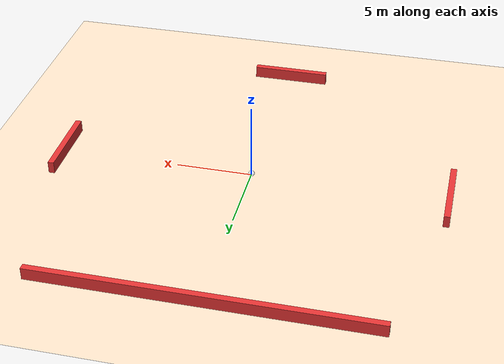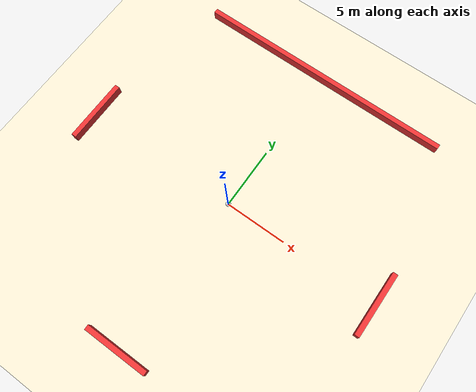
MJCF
<mujoco model="sphere">
    <compiler angle="degree" coordinate="local" inertiafromgeom="true"/>

    <option density="4000" integrator="RK4" timestep="0.01" viscosity="0.1"/>

    <default>
        <geom conaffinity="1" condim="1" contype="1" margin="0.001" solimp=".8 .8 .01" solref="0.02 1" material="geom" />

    </default>

    <asset>
        <texture builtin="gradient" height="100" rgb1="1 1 1" rgb2="0 0 0" type="skybox" width="100"/>
        <texture builtin="flat" height="1278" mark="cross" markrgb="1 1 1" name="texgeom" random="0.01" rgb1="0.8 0.6 0.4" rgb2="0.8 0.6 0.4" type="cube" width="127"/>
        <texture builtin="checker" height="100" name="texplane" rgb1="0 0 0" rgb2="0.8 0.8 0.8" type="2d" width="100"/>
        <material name="MatPlane" reflectance="0.5" shininess="1" specular="1" texrepeat="30 30" texture="texplane"/>
        <material name="geom" texture="texgeom" texuniform="true"/>
    </asset>

    <worldbody>
        <light cutoff="100" diffuse="1 1 1" dir="-1 0 -1.3" directional="true" exponent="1" pos="0 0 1.3" specular=".1 .1 .1"/>
        <geom conaffinity="1" condim="3" material="MatPlane" name="floor" pos="0 0 -0.1" rgba="1 0.9 0.8 1" size="40 40 0.1" type="plane"/>

        <!--            Sphere              -->
        <body name="ball" pos="0 0 0.1">
            <geom friction= "2.0" conaffinity="1" contype="1" density="1000" type="sphere" size="0.2" rgba="1 1 1 1"/>
            <joint axis="1 0 0" name="x-rotor" pos="0 0 0.2" type="slide"/>
            <joint axis="0 1 0" name="y-rotor" pos="0 0 0.2" type="slide"/>

        </body>

        <body name="wall-up" pos="-12.8 0 0.3">
            <geom friction= "2.0" conaffinity="1" contype="1" density="1000" size="0.2 2.6 0.4" rgba="0.9 0.2 0.2 1" type="box"/>
        </body>
        <body name="wall-left" pos="-0.04 -12.8 0.3">
            <geom conaffinity="1" friction= "2.0" contype="1" density="1000" size="2.6 0.2 0.4" rgba="0.9 0.2 0.2 1" type="box"/>
        </body>
        <body name="wall-bottom" pos="12.8 0 0.3">
            <geom friction= "2.0" conaffinity="1" contype="1" density="1000" size="0.2 2.6 0.4" rgba="0.9 0.2 0.2 1" type="box"/>
        </body>
        <body name="wall-right" pos="-0.04 12.8 0.3">
            <geom conaffinity="1" friction= "2.0" contype="1" density="1000" size="10.6 0.2 0.4" rgba="0.9 0.2 0.2 1" type="box"/>
        </body>

    </worldbody>
    <actuator>
        <motor ctrllimited="true" ctrlrange="-3 3" gear="1500.0" joint="x-rotor"/>
        <motor ctrllimited="true" ctrlrange="-3 3" gear="1500.0" joint="y-rotor"/>
    </actuator>
</mujoco>
